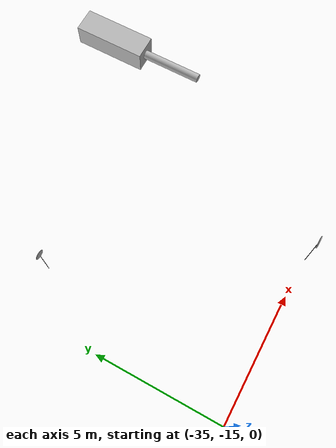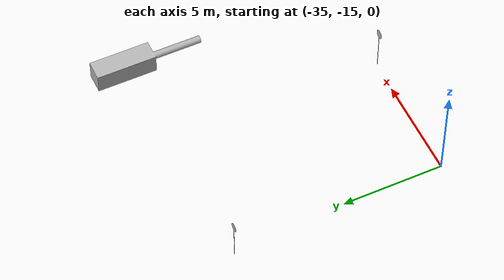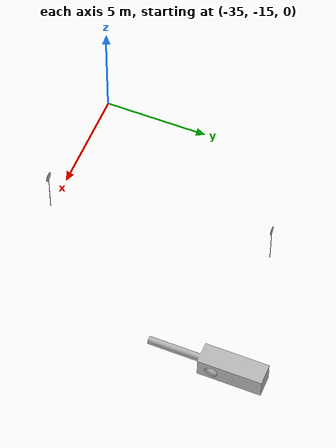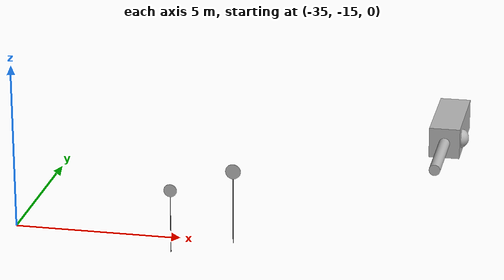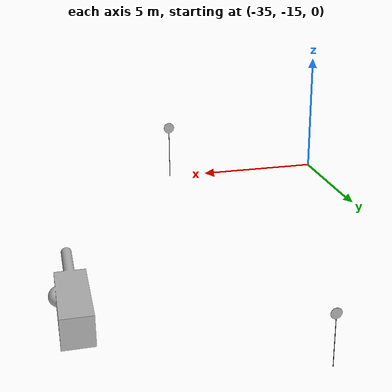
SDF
<sdf version="1.10">
 <world name="ackermann_steering">
  <model name="tabela_0">
   <link name="link">
    <visual name="visual">
     <geometry>
      <mesh><uri>file:///home/ser/robotaksi-gazebo-master/models/işaretler/girilmez/meshes/tabela.dae</uri></mesh>
     </geometry>
    </visual>
    <collision name="collision">
     <geometry>
      <mesh><uri>file:///home/ser/robotaksi-gazebo-master/models/işaretler/girilmez/meshes/tabela.dae</uri></mesh>
     </geometry>
    </collision>
    <inertial>
     <mass>1</mass>
     <inertia><ixx>1</ixx><ixy>0</ixy><ixz>0</ixz><iyy>1</iyy><iyz>0</iyz><izz>1</izz></inertia>
    </inertial>
   </link>
   <pose>-32.566898345947266 -5.5904498100280762 -4.5730166435241699 0 0 0</pose>
   <static>false</static>
  </model>
  <model name="tabela_2">
   <link name="link">
    <visual name="visual">
     <geometry>
      <mesh>
       <uri>file:///home/ser/robotaksi-gazebo-master/models/işaretler/sola_donulmez/meshes/tabela.dae</uri>
      </mesh>
     </geometry>
    </visual>
    <collision name="collision">
     <geometry>
      <mesh>
       <uri>file:///home/ser/robotaksi-gazebo-master/models/işaretler/sola_donulmez/meshes/tabela.dae</uri>
      </mesh>
     </geometry>
    </collision>
    <inertial>
     <mass>1</mass>
     <inertia><ixx>1</ixx><ixy>0</ixy><ixz>0</ixz><iyy>1</iyy><iyz>0</iyz><izz>1</izz></inertia>
    </inertial>
   </link>
   <pose>-28.397308541589418 -15.071906769680492 0 0 0 0</pose>
   <static>false</static>
  </model>
  <model name="traffic_green">
   <link name="link">
    <visual name="visual">
     <geometry>
      <mesh>
       <uri>file:///home/ser/robotaksi-gazebo-master/models/işaretler/traffic_green/meshes/traffic_green.obj</uri>
      </mesh>
     </geometry>
    </visual>
    <collision name="collision">
     <geometry>
      <mesh>
       <uri>file:///home/ser/robotaksi-gazebo-master/models/işaretler/traffic_green/meshes/traffic_green.obj</uri>
      </mesh>
     </geometry>
    </collision>
    <inertial>
     <mass>1</mass>
     <inertia><ixx>1</ixx><ixy>0</ixy><ixz>0</ixz><iyy>1</iyy><iyz>0</iyz><izz>1</izz></inertia>
    </inertial>
   </link>
   <pose>-23.375533055358048 -7.8885779252788293 0 0 0 0</pose>
   <static>false</static>
  </model>
 </world>
</sdf>
